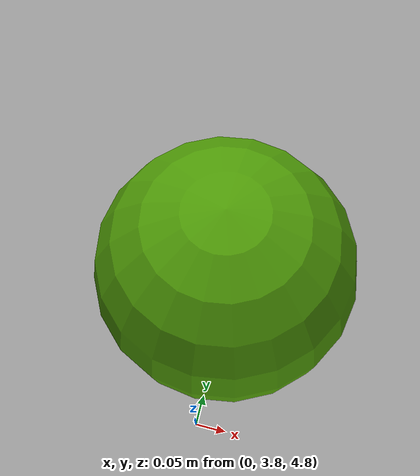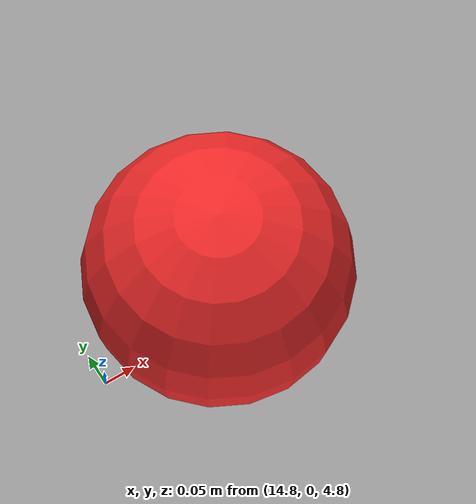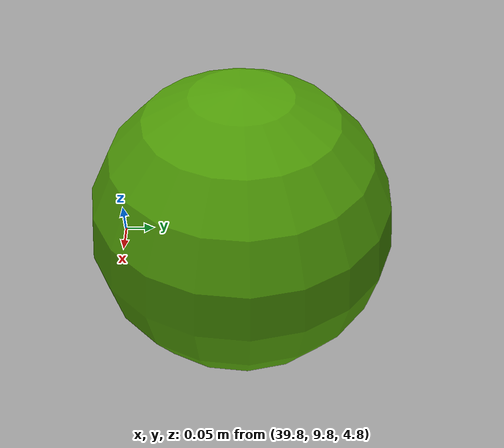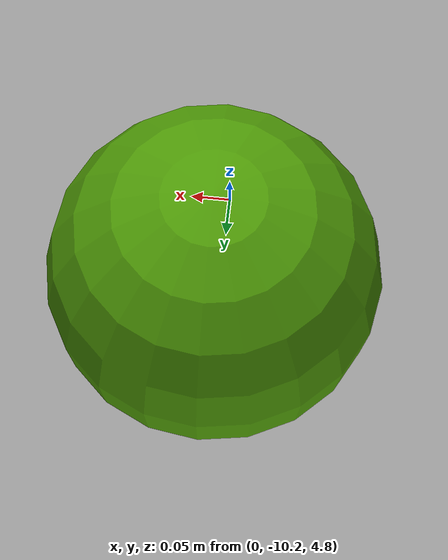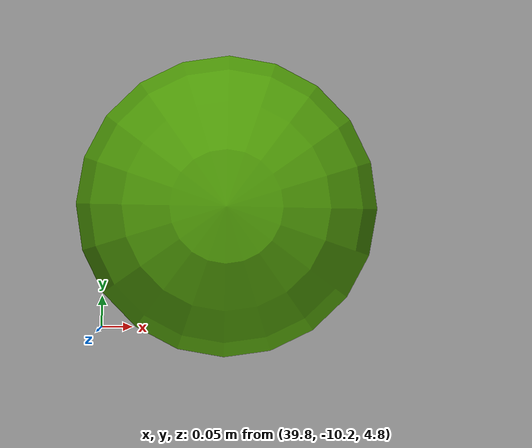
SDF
<sdf version="1.7">
 <world name="default">
  <physics type="ode">
   <ode>
    <solver>
     <type>quick</type>
     <iters>100</iters>
     <sor>1</sor>
     <use_dynamic_moi_rescaling>0</use_dynamic_moi_rescaling>
    </solver>
    <constraints>
     <cfm>0</cfm>
     <erp>0.9</erp>
     <contact_max_correcting_vel>0.1</contact_max_correcting_vel>
     <contact_surface_layer>0</contact_surface_layer>
    </constraints>
   </ode>
   <real_time_update_rate>-1</real_time_update_rate>
   <max_step_size>0.001</max_step_size>
   <real_time_factor>1</real_time_factor>
  </physics>
  <model name="ground_plane">
   <static>1</static>
   <link name="link">
    <collision name="collision">
     <geometry><plane><normal>0 0 1</normal><size>5000 5000</size></plane></geometry>
     <surface><friction><ode><mu>1</mu><mu2>1</mu2></ode></friction></surface>
    </collision>
    <visual name="grass">
     <pose>0 0 -0.1 0 -0 0</pose>
     <cast_shadows>0</cast_shadows>
     <geometry><plane><normal>0 0 1</normal><size>5000 5000</size></plane></geometry>
     <material>
      <script><uri>file://media/materials/scripts/gazebo.material</uri><name>Gazebo/Grass</name></script>
     </material>
    </visual>
   </link>
  </model>
  <light name="sun" type="directional">
   <pose>0 0 10 0 -0 0</pose>
   <diffuse>0.8 0.8 0.8 1</diffuse>
   <specular>0.2 0.2 0.2 1</specular>
   <attenuation>
    <range>1000</range>
    <constant>0.9</constant>
    <linear>0.01</linear>
    <quadratic>0.001</quadratic>
   </attenuation>
   <direction>-0.5 0.1 -0.9</direction>
   <spot><inner_angle>0</inner_angle><outer_angle>0</outer_angle><falloff>0</falloff></spot>
  </light>
  <gravity>0 0 -9.8</gravity>
  <magnetic_field>6e-06 2.3e-05 -4.2e-05</magnetic_field>
  <atmosphere type="adiabatic"/>
  <scene><ambient>0.4 0.4 0.4 1</ambient><background>0.7 0.7 0.7 1</background><shadows>1</shadows></scene>
  <spherical_coordinates>
   <surface_model>EARTH_WGS84</surface_model>
   <latitude_deg>0</latitude_deg>
   <longitude_deg>0</longitude_deg>
   <elevation>0</elevation>
   <heading_deg>0</heading_deg>
  </spherical_coordinates>
  <model name="green_waypoint">
   <link name="link">
    <inertial>
     <mass>1</mass>
     <inertia><ixx>0.1</ixx><ixy>0</ixy><ixz>0</ixz><iyy>0.1</iyy><iyz>0</iyz><izz>0.1</izz></inertia>
    </inertial>
    <gravity>0</gravity>
    <visual name="visual">
     <geometry><sphere><radius>0.2</radius></sphere></geometry>
     <material>
      <script><name>Gazebo/Grey</name><uri>file://media/materials/scripts/gazebo.material</uri></script>
      <shader type="pixel"><normal_map>__default__</normal_map></shader>
      <ambient>0.3 0.3 0.3 1</ambient>
      <diffuse>0.306 0.604 0.024 1</diffuse>
      <specular>0.01 0.01 0.01 1</specular>
      <emissive>0 0 0 1</emissive>
     </material>
     <transparency>0.05</transparency>
    </visual>
   </link>
   <static>0</static>
   <pose>40 -10 5 0 -0 0</pose>
  </model>
  <model name="green_waypoint_0">
   <link name="link">
    <inertial>
     <mass>1</mass>
     <inertia><ixx>0.1</ixx><ixy>0</ixy><ixz>0</ixz><iyy>0.1</iyy><iyz>0</iyz><izz>0.1</izz></inertia>
    </inertial>
    <gravity>0</gravity>
    <visual name="visual">
     <geometry><sphere><radius>0.2</radius></sphere></geometry>
     <material>
      <script><name>Gazebo/Grey</name><uri>file://media/materials/scripts/gazebo.material</uri></script>
      <shader type="pixel"><normal_map>__default__</normal_map></shader>
      <ambient>0.3 0.3 0.3 1</ambient>
      <diffuse>0.306 0.604 0.024 1</diffuse>
      <specular>0.01 0.01 0.01 1</specular>
      <emissive>0 0 0 1</emissive>
     </material>
     <transparency>0.05</transparency>
    </visual>
   </link>
   <static>0</static>
   <pose>15 -10 5 0 -0 0</pose>
  </model>
  <model name="green_waypoint_1">
   <link name="link">
    <inertial>
     <mass>1</mass>
     <inertia><ixx>0.1</ixx><ixy>0</ixy><ixz>0</ixz><iyy>0.1</iyy><iyz>0</iyz><izz>0.1</izz></inertia>
    </inertial>
    <gravity>0</gravity>
    <visual name="visual">
     <geometry><sphere><radius>0.2</radius></sphere></geometry>
     <material>
      <script><name>Gazebo/Grey</name><uri>file://media/materials/scripts/gazebo.material</uri></script>
      <shader type="pixel"><normal_map>__default__</normal_map></shader>
      <ambient>0.3 0.3 0.3 1</ambient>
      <diffuse>0.306 0.604 0.024 1</diffuse>
      <specular>0.01 0.01 0.01 1</specular>
      <emissive>0 0 0 1</emissive>
     </material>
     <transparency>0.05</transparency>
    </visual>
   </link>
   <static>0</static>
   <pose>0 -10 5 0 -0 0</pose>
  </model>
  <model name="green_waypoint_2">
   <link name="link">
    <inertial>
     <mass>1</mass>
     <inertia><ixx>0.1</ixx><ixy>0</ixy><ixz>0</ixz><iyy>0.1</iyy><iyz>0</iyz><izz>0.1</izz></inertia>
    </inertial>
    <gravity>0</gravity>
    <visual name="visual">
     <geometry><sphere><radius>0.2</radius></sphere></geometry>
     <material>
      <script><name>Gazebo/Grey</name><uri>file://media/materials/scripts/gazebo.material</uri></script>
      <shader type="pixel"><normal_map>__default__</normal_map></shader>
      <ambient>0.3 0.3 0.3 1</ambient>
      <diffuse>0.306 0.604 0.024 1</diffuse>
      <specular>0.01 0.01 0.01 1</specular>
      <emissive>0 0 0 1</emissive>
     </material>
     <transparency>0.05</transparency>
    </visual>
   </link>
   <static>0</static>
   <pose>0 4 5 0 -0 0</pose>
  </model>
  <model name="green_waypoint_3">
   <link name="link">
    <inertial>
     <mass>1</mass>
     <inertia><ixx>0.1</ixx><ixy>0</ixy><ixz>0</ixz><iyy>0.1</iyy><iyz>0</iyz><izz>0.1</izz></inertia>
    </inertial>
    <gravity>0</gravity>
    <visual name="visual">
     <geometry><sphere><radius>0.2</radius></sphere></geometry>
     <material>
      <script><name>Gazebo/Grey</name><uri>file://media/materials/scripts/gazebo.material</uri></script>
      <shader type="pixel"><normal_map>__default__</normal_map></shader>
      <ambient>0.3 0.3 0.3 1</ambient>
      <diffuse>0.306 0.604 0.024 1</diffuse>
      <specular>0.01 0.01 0.01 1</specular>
      <emissive>0 0 0 1</emissive>
     </material>
     <transparency>0.05</transparency>
    </visual>
   </link>
   <static>0</static>
   <pose>40 10 5 0 -0 0</pose>
  </model>
  <model name="green_waypoint_3_clone">
   <link name="link">
    <inertial>
     <mass>1</mass>
     <inertia><ixx>0.1</ixx><ixy>0</ixy><ixz>0</ixz><iyy>0.1</iyy><iyz>0</iyz><izz>0.1</izz></inertia>
    </inertial>
    <gravity>0</gravity>
    <visual name="visual">
     <geometry><sphere><radius>0.2</radius></sphere></geometry>
     <material>
      <script><name>Gazebo/Grey</name><uri>file://media/materials/scripts/gazebo.material</uri></script>
      <shader type="pixel"><normal_map>__default__</normal_map></shader>
      <ambient>0.3 0.3 0.3 1</ambient>
      <diffuse>0.306 0.604 0.024 1</diffuse>
      <specular>0.01 0.01 0.01 1</specular>
      <emissive>0 0 0 1</emissive>
     </material>
     <transparency>0.05</transparency>
    </visual>
   </link>
   <static>0</static>
   <pose>15 10 5 0 -0 0</pose>
  </model>
  <model name="green_waypoint_3_clone_clone">
   <link name="link">
    <inertial>
     <mass>1</mass>
     <inertia><ixx>0.1</ixx><ixy>0</ixy><ixz>0</ixz><iyy>0.1</iyy><iyz>0</iyz><izz>0.1</izz></inertia>
    </inertial>
    <gravity>0</gravity>
    <visual name="visual">
     <geometry><sphere><radius>0.2</radius></sphere></geometry>
     <material>
      <script><name>Gazebo/Grey</name><uri>file://media/materials/scripts/gazebo.material</uri></script>
      <shader type="pixel"><normal_map>__default__</normal_map></shader>
      <ambient>0.3 0.3 0.3 1</ambient>
      <diffuse>0.306 0.604 0.024 1</diffuse>
      <specular>0.01 0.01 0.01 1</specular>
      <emissive>0 0 0 1</emissive>
     </material>
     <transparency>0.05</transparency>
    </visual>
   </link>
   <static>0</static>
   <pose>0 10 5 0 -0 0</pose>
  </model>
  <model name="red_waypoint">
   <link name="link">
    <inertial>
     <mass>1</mass>
     <inertia><ixx>0.1</ixx><ixy>0</ixy><ixz>0</ixz><iyy>0.1</iyy><iyz>0</iyz><izz>0.1</izz></inertia>
     <pose>0 0 10 0 -0 0</pose>
    </inertial>
    <gravity>0</gravity>
    <visual name="visual">
     <geometry><sphere><radius>0.2</radius></sphere></geometry>
     <material>
      <script><name>Gazebo/Grey</name><uri>file://media/materials/scripts/gazebo.material</uri></script>
      <shader type="pixel"><normal_map>__default__</normal_map></shader>
      <ambient>0.3 0.3 0.3 1</ambient>
      <diffuse>0.937 0.161 0.161 1</diffuse>
      <specular>0.01 0.01 0.01 1</specular>
      <emissive>0 0 0 1</emissive>
     </material>
     <transparency>0.05</transparency>
    </visual>
   </link>
   <static>0</static>
   <pose>15 0 5 0 -0 0</pose>
  </model>
  <model name="ground_plane_0">
   <static>1</static>
   <link name="link">
    <collision name="collision">
     <geometry><plane><normal>0 0 1</normal><size>100 100</size></plane></geometry>
     <surface>
      <contact><collide_bitmask>65535</collide_bitmask></contact>
      <friction><ode><mu>100</mu><mu2>50</mu2></ode></friction>
     </surface>
    </collision>
    <visual name="visual">
     <cast_shadows>0</cast_shadows>
     <geometry><plane><normal>0 0 1</normal><size>100 100</size></plane></geometry>
     <material>
      <script><uri>file://media/materials/scripts/gazebo.material</uri><name>Gazebo/Grey</name></script>
     </material>
    </visual>
   </link>
   <pose>23.7201 2.14936 0 0 -0 0</pose>
  </model>
 </world>
</sdf>
